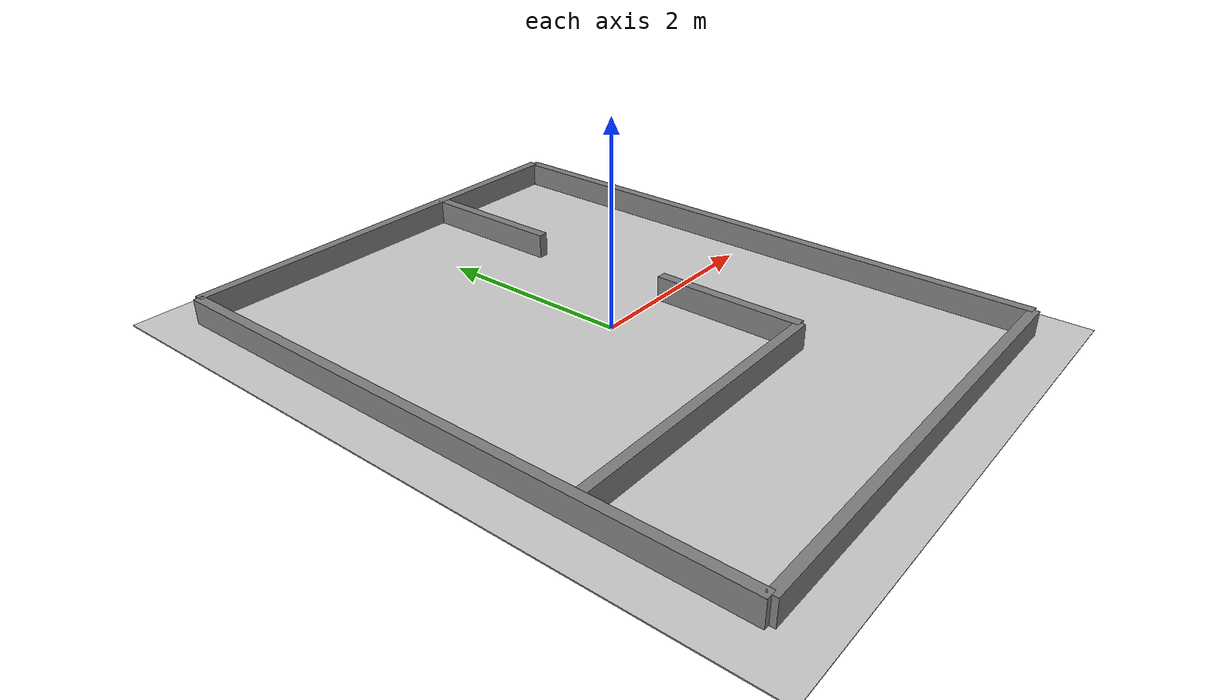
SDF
<sdf version='1.10'>
  <world name='project_world'>
    <physics name="1ms" type="ode">
      <max_step_size>0.001</max_step_size>
      <real_time_update_rate>1000</real_time_update_rate>
      <real_time_factor>1.0</real_time_factor>
    </physics>

    <plugin filename="gz-sim-physics-system"
      name="gz::sim::systems::Physics"/>
    <plugin filename="gz-sim-user-commands-system"
      name="gz::sim::systems::UserCommands"/>
    <plugin filename="gz-sim-scene-broadcaster-system"
      name="gz::sim::systems::SceneBroadcaster"/>
    <plugin filename="gz-sim-imu-system"
      name="gz::sim::systems::Imu"/>

    <gravity>0 0 -9.8</gravity>
    <magnetic_field>5.5644999999999998e-06 2.2875799999999999e-05 -4.2388400000000002e-05</magnetic_field>
    <atmosphere type='adiabatic'/>
    <scene>
      <ambient>0.4 0.4 0.4 1</ambient>
      <background>0.7 0.7 0.7 1</background>
      <shadows>true</shadows>
    </scene>

    <!-- Ground plane -->
    <model name='ground_plane'>
      <static>true</static>
      <pose>0 0 -0.005 0 0 0</pose>
      <link name='link'>
        <collision name='collision'>
          <geometry>
            <box>
              <size>100 100 0.01</size>
            </box>
          </geometry>
          <surface>
            <friction>
              <ode>
                <mu>100</mu>
                <mu2>50</mu2>
              </ode>
            </friction>
          </surface>
        </collision>
        <visual name='visual'>
          <geometry>
            <box>
              <size>100 100 0.01</size>
            </box>
          </geometry>
          <material>
            <ambient>0.8 0.8 0.8 1</ambient>
            <diffuse>0.8 0.8 0.8 1</diffuse>
          </material>
        </visual>
      </link>
    </model>

    <!-- Perimeter (15' wide x 20' tall) -->
    <!-- Top wall -->
    <model name='wall_outer_north'>
      <static>true</static>
      <pose>0 3.048 0 0 0 0</pose>
      <link name='link'>
        <collision name='collision'>
          <geometry><box><size>4.572 0.10 0.50</size></box></geometry>
        </collision>
        <visual name='visual'>
          <geometry><box><size>4.572 0.10 0.50</size></box></geometry>
          <material>
            <ambient>0.5 0.5 0.5 1</ambient>
            <diffuse>0.5 0.5 0.5 1</diffuse>
          </material>
        </visual>
      </link>
    </model>

    <!-- Bottom wall -->
    <model name='wall_outer_south'>
      <static>true</static>
      <pose>0 -3.048 0 0 0 0</pose>
      <link name='link'>
        <collision name='collision'>
          <geometry><box><size>4.572 0.10 0.50</size></box></geometry>
        </collision>
        <visual name='visual'>
          <geometry><box><size>4.572 0.10 0.50</size></box></geometry>
          <material>
            <ambient>0.5 0.5 0.5 1</ambient>
            <diffuse>0.5 0.5 0.5 1</diffuse>
          </material>
        </visual>
      </link>
    </model>

    <!-- Left wall -->
    <model name='wall_outer_west'>
      <static>true</static>
      <pose>-2.286 0 0 0 0 0</pose>
      <link name='link'>
        <collision name='collision'>
          <geometry><box><size>0.10 6.096 0.50</size></box></geometry>
        </collision>
        <visual name='visual'>
          <geometry><box><size>0.10 6.096 0.50</size></box></geometry>
          <material>
            <ambient>0.5 0.5 0.5 1</ambient>
            <diffuse>0.5 0.5 0.5 1</diffuse>
          </material>
        </visual>
      </link>
    </model>

    <!-- Right wall -->
    <model name='wall_outer_east'>
      <static>true</static>
      <pose>2.286 0 0 0 0 0</pose>
      <link name='link'>
        <collision name='collision'>
          <geometry><box><size>0.10 6.096 0.50</size></box></geometry>
        </collision>
        <visual name='visual'>
          <geometry><box><size>0.10 6.096 0.50</size></box></geometry>
          <material>
            <ambient>0.5 0.5 0.5 1</ambient>
            <diffuse>0.5 0.5 0.5 1</diffuse>
          </material>
        </visual>
      </link>
    </model>

    <!-- Room walls (10' wide, 15' tall) -->
    <!-- Room bottom wall -->
    <model name='wall_room_south'>
      <static>true</static>
      <pose>-0.762 -1.524 0 0 0 0</pose>
      <link name='link'>
        <collision name='collision'>
          <geometry><box><size>3.048 0.10 0.50</size></box></geometry>
        </collision>
        <visual name='visual'>
          <geometry><box><size>3.048 0.10 0.50</size></box></geometry>
          <material>
            <ambient>0.5 0.5 0.5 1</ambient>
            <diffuse>0.5 0.5 0.5 1</diffuse>
          </material>
        </visual>
      </link>
    </model>

    <!-- Room right wall above the doorway -->
    <model name='wall_room_east_upper'>
      <static>true</static>
      <pose>0.762 2.286 0 0 0 0</pose>
      <link name='link'>
        <collision name='collision'>
          <geometry><box><size>0.10 1.524 0.50</size></box></geometry>
        </collision>
        <visual name='visual'>
          <geometry><box><size>0.10 1.524 0.50</size></box></geometry>
          <material>
            <ambient>0.5 0.5 0.5 1</ambient>
            <diffuse>0.5 0.5 0.5 1</diffuse>
          </material>
        </visual>
      </link>
    </model>

    <!-- Room right wall segment below the doorway -->
    <model name='wall_room_east_lower'>
      <static>true</static>
      <pose>0.762 -0.762 0 0 0 0</pose>
      <link name='link'>
        <collision name='collision'>
          <geometry><box><size>0.10 1.524 0.50</size></box></geometry>
        </collision>
        <visual name='visual'>
          <geometry><box><size>0.10 1.524 0.50</size></box></geometry>
          <material>
            <ambient>0.5 0.5 0.5 1</ambient>
            <diffuse>0.5 0.5 0.5 1</diffuse>
          </material>
        </visual>
      </link>
    </model>

    <!-- Sun -->
    <light name='sun' type='directional'>
      <pose>0 0 10 0 0 0</pose>
      <cast_shadows>true</cast_shadows>
      <intensity>1</intensity>
      <direction>-0.5 0.1 -0.9</direction>
      <diffuse>0.8 0.8 0.8 1</diffuse>
      <specular>0.2 0.2 0.2 1</specular>
      <attenuation>
        <range>1000</range>
        <linear>0.01</linear>
        <constant>0.9</constant>
        <quadratic>0.001</quadratic>
      </attenuation>
      <spot>
        <inner_angle>0</inner_angle>
        <outer_angle>0</outer_angle>
        <falloff>0</falloff>
      </spot>
    </light>
  </world>
</sdf>
